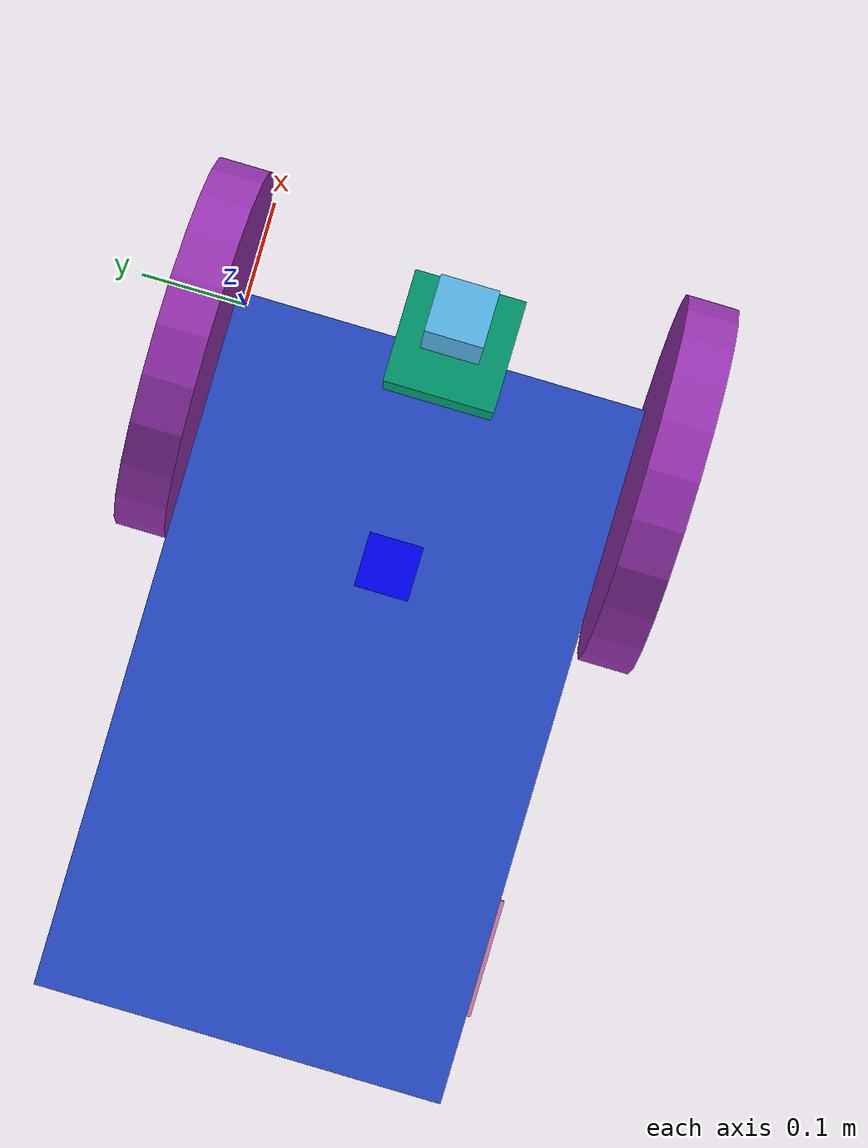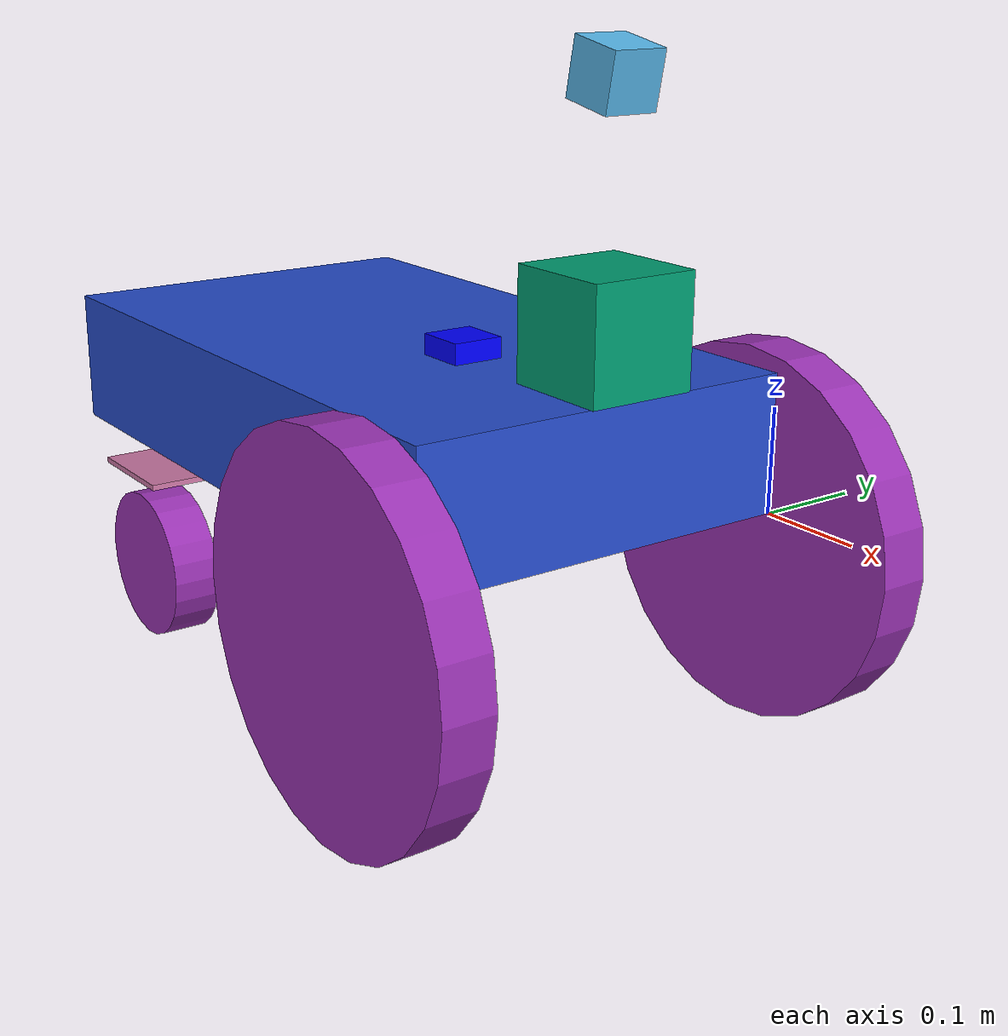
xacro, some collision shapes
<?xml version="1.0"?>

<robot name="ashwini" xmlns:xacro="ashwini_description_xacro_namespace">
  <!-- Dummy root link without inertia -->

  <xacro:include filename="$(find ashwini)/urdf/ashwini.gazebo" />

  <xacro:property name="pi" value="3.1415926535897931" />

  <xacro:property name="camera_mass" value="0.1"/>
	<xacro:property name="hokoyu_mass" value="1e-5"/>

  <xacro:property name="base_link_length_width_height" value="0.650 0.381 0.132" />
  <xacro:property name="base_link_length" value="0.650" />
  <xacro:property name="base_link_width" value="0.381" />
  <xacro:property name="base_link_height" value="0.132" />
  <xacro:property name="base_link_mass" value="20"/> <!--25 kg-->

  <xacro:property name="drive_wheel_length" value="0.049" />
  <xacro:property name="drive_wheel_radius" value="0.181" />
  <xacro:property name="drive_wheel_mass" value="2"/> <!--2 kg-->

  <xacro:property name="castor_mount_link_length_width_height" value="0.1145 0.10 0.0057" />
  <xacro:property name="castor_mount_link_length" value="0.1145" />
  <xacro:property name="castor_mount_link_width" value="0.10" />
  <xacro:property name="castor_mount_link_height" value="0.0057" />
  <xacro:property name="castor_mount_link_mass" value="0.25"/> <!--0.25 kg-->

  <xacro:property name="castor_mount_dummy_link_length" value="0.02" />
  <xacro:property name="castor_mount_dummy_link_width" value="0.02" />
  <xacro:property name="castor_mount_dummy_link_height" value="0.02" />
  <xacro:property name="castor_mount_dummy_link_mass" value="1.5"/> <!--0.25 kg-->

  <xacro:property name="castor_wheel_length" value="0.049" />
  <xacro:property name="castor_wheel_radius" value="0.07925" />
  <xacro:property name="castor_wheel_mass" value="2"/> <!--2 kg-->

  <xacro:property name="friction_val" value="0.15"/>

  <xacro:macro name="box_link" params="link_name length width height mass *origin">
    <link name="${link_name}_link">
      <collision>
        <geometry>
          <box size="${length} ${width} ${height}"/>
        </geometry>
        <xacro:insert_block name="origin" />
      </collision>

      <visual>
        <geometry>
          <!--box dimensions is Meters. L X W X H where the L X H is a ractange,
              and the H extrudes it upwards -->
          <box size="${length} ${width} ${height}"/>
        </geometry>
        <xacro:insert_block name="origin" />
      </visual>

      <inertial>
        <xacro:insert_block name="origin" />
        <!--all blocks now need a 'mass' argument-->
        <mass value="${mass}"/>
        <!--This is the 3x3 inertial matrix. See: https://wiki.ros.org/urdf/XML/link -->
        <!--where x=length; y=width; z=height. these lines of code came from
        Emiliano Borghi's project-->
        <inertia
          ixx="${mass*(width*width+height*height)/12}"
          ixy = "0"
          ixz = "0"
          iyy="${mass*(length*length+height*height)/12}"
          iyz = "0"
          izz="${mass*(length*length+height*height)/12}"/>
        </inertial>

    </link>
  </xacro:macro>

  <xacro:macro name="cylinder_link" params="link_name length radius mass *origin">
    <link name="${link_name}_link">
      <collision>
        <geometry>
          <cylinder length="${length}" radius="${radius}"/>
        </geometry>
        <xacro:insert_block name="origin" />
      </collision>

      <visual>
        <geometry>
          <cylinder length="${length}" radius="${radius}"/>
        </geometry>
        <xacro:insert_block name="origin" />

      </visual>

      <!--TODO-->
      <inertial>
        <xacro:insert_block name="origin" />
        <!--all blocks now need a 'mass' argument-->
        <mass value="${mass}"/>

        <!--This is the 3x3 inertial matrix. See: https://wiki.ros.org/urdf/XML/link -->
        <inertia
          ixx="${mass*(3*radius*radius+length*length)/12}"
    	  ixy = "0"
    	  ixz = "0"
    	  iyy="${mass*(3*radius*radius+length*length)/12}"
    	  iyz = "0"
    	  izz="${mass*radius*radius/2}"
        />
      </inertial>

    </link>
  </xacro:macro>

  <xacro:macro name="continuous_joint" params="name rpy xyz parent child friction *origin">
    <joint name="${name}_joint" type="continuous">
      <axis rpy="${rpy}" xyz="${xyz}"/>
      <parent link="${parent}_link"/>
      <child link="${child}_link"/>
      <!-- this is the point at which the two parts attach to one another    -->
      <xacro:insert_block name="origin" />
      <!--This introduces friction so that continious joints don't spin indefinitly
      damping is only used in Gazebo4 and earlier.... -->
      <dynamics damping="0.0" friction="${friction}"/>
    </joint>
  </xacro:macro>

  <xacro:macro name="fixed_joint" params="name parent child *origin">
    <joint name="${name}_joint" type="fixed">
      <parent link="${parent}_link"/>
      <child link="${child}_link"/>
      <!-- this is the point at which the two parts attach to one another    -->
      <xacro:insert_block name="origin" />
    </joint>
  </xacro:macro>

  <xacro:box_link link_name="base" length="${base_link_length}"
                                   width="${base_link_width}"
                                   height="${base_link_height}"  mass="${base_link_mass}">
    <!--origin rpy="0 0 0" xyz="-0.325 -0.1905 0.066"/-->
    <origin rpy="0 0 0" xyz="-0.325 -0.1905 0.066"/>
  </xacro:box_link>

  <xacro:cylinder_link link_name="left_drive_wheel" length="${drive_wheel_length}" radius="${drive_wheel_radius}"  mass="${drive_wheel_mass}">
    <origin xyz="0 0 0" rpy="${pi/2} 0 0"/>
  </xacro:cylinder_link>

  <xacro:continuous_joint name="base_to_left_drive_wheel" rpy="0 0 0" xyz="0 1 0" parent="base" child="left_drive_wheel"
                          friction="${friction_val}">
    <origin xyz="-0.05 0.037 -0.035"/>
  </xacro:continuous_joint>

  <!--right_drive_wheel_link is a well named link :-) -->
  <xacro:cylinder_link link_name="right_drive_wheel" length="${drive_wheel_length}" radius="${drive_wheel_radius}"  mass="${drive_wheel_mass}">
    <origin xyz="0 0 0" rpy="${pi/2} 0 0"/>
  </xacro:cylinder_link>

  <xacro:continuous_joint name="base_to_right_drive_wheel" rpy="0 0 0" xyz="0 1 0" parent="base" child="right_drive_wheel"
                          friction="${friction_val}">
    <origin xyz="-0.05 -0.421 -0.035"/>
  </xacro:continuous_joint>

  <!--+++++++++++++++++++++++++++++++++++LEFT CASTOR+++++++++++++++++++++++++++++++++++++++++++++++++++-->
  <!--left_caster_mount -->
  <xacro:box_link link_name="left_castor_mount" length="${castor_mount_link_length}"
                                                width="${castor_mount_link_width}"
                                                height="${castor_mount_link_height}"
                                                mass="${castor_mount_link_mass}">
    <origin xyz="0 0 0" rpy="0 0 0" />
  </xacro:box_link>

   <!--joint-->
  <xacro:fixed_joint name="base_to_left_castor_mount" parent="base" child="left_castor_mount">
    <origin xyz="-0.52835 -0.041 -0.03265"/>
  </xacro:fixed_joint>

  <!--left_caster_dummy to give the castor wheel rotation about the Z axis -->
  <xacro:box_link link_name="left_castor_dummy" length="${castor_mount_dummy_link_length}"
                                                width="${castor_mount_dummy_link_width}"
                                                height="${castor_mount_dummy_link_height}"
                                                mass="${castor_mount_dummy_link_mass}">
    <origin xyz="0 0 0" rpy="0 0 0" />
  </xacro:box_link>

  <!--joint between left castor mount and dummy link to allow rotation of castor wheel about z axis-->
  <xacro:continuous_joint name="left_castor_mount_to_left_castor_dummy" rpy="0 0 0" xyz="0 0 1"
                          parent="left_castor_mount" child="left_castor_dummy" friction="${friction_val}">
    <origin xyz="0.0 0.0 -0.01"/>
  </xacro:continuous_joint>

  <!--left_castor_wheel_link is a well named link :-) -->
  <xacro:cylinder_link link_name="left_castor_wheel" length="${castor_wheel_length}" radius="${castor_wheel_radius}"  mass="${castor_wheel_mass}">
    <origin xyz="0 0 0" rpy="${pi/2} 0 0"/>
  </xacro:cylinder_link>

  <xacro:continuous_joint name="left_castor_dummy_to_left_castor_wheel" rpy="0 0 0" xyz="0 1 0"
                          parent="left_castor_dummy" child="left_castor_wheel" friction="${friction_val}">
    <origin xyz="-0.037 0.0 -0.10785"/>
  </xacro:continuous_joint>

  <!--+++++++++++++++++++++++++++++++++++RIGHT CASTOR+++++++++++++++++++++++++++++++++++++++++++++++++++-->

  <!--right_caster_plate_link is a well named link :-) -->
  <xacro:box_link link_name="right_castor_mount" length="${castor_mount_link_length}"
                                                 width="${castor_mount_link_width}"
                                                 height="${castor_mount_link_height}"
                                                 mass="${castor_mount_link_mass}">
    <origin xyz="0 0 0" rpy="0 0 0" />
  </xacro:box_link>

  <xacro:fixed_joint name="base_to_right_castor_mount" parent="base" child="right_castor_mount">
    <origin xyz="-0.52835 -0.344 -0.03265"/>
  </xacro:fixed_joint>

  <!--right_caster_dummy to give the castor wheel rotation about the Z axis -->
  <xacro:box_link link_name="right_castor_dummy" length="${castor_mount_dummy_link_length}"
                                                 width="${castor_mount_dummy_link_width}"
                                                 height="${castor_mount_dummy_link_height}"
                                                 mass="${castor_mount_dummy_link_mass}">
    <origin xyz="0 0 0" rpy="0 0 0" />
  </xacro:box_link>

  <!--joint between right castor mount and dummy link to allow rotation of castor wheel about z axis-->
  <xacro:continuous_joint name="right_castor_mount_to_right_castor_dummy" rpy="0 0 0" xyz="0 0 1"
                          parent="right_castor_mount" child="right_castor_dummy" friction="${friction_val}">
    <origin xyz="0.0 0.0  -0.01"/>
  </xacro:continuous_joint>

  <!--right_castor_wheel_link is a well named link :-) -->
  <xacro:cylinder_link link_name="right_castor_wheel" length="${castor_wheel_length}" radius="${castor_wheel_radius}"
                        mass="${castor_wheel_mass}">
    <origin xyz="0 0 0" rpy="${pi/2} 0 0"/>
  </xacro:cylinder_link>

  <xacro:continuous_joint name="right_castor_dummy_to_right_castor_wheel" rpy="0 0 0" xyz="0 1 0"
                          parent="right_castor_dummy" child="right_castor_wheel" friction="${friction_val}">
    <origin xyz="-0.037 0 -0.10785"/>
  </xacro:continuous_joint>

  <link name="camera">
		<inertial>
			<mass value="${camera_mass}"/>
			<origin xyz="0 0 0" rpy="0 0 0"/>
			<inertia
		        ixx="1e-6" ixy="0.0" ixz="0.0"
		        iyy="1e-6" iyz="0.0"
		        izz="1e-6"
		      />
		</inertial>

		<visual>
			<origin xyz="0 0 0" rpy="0 0 0"/>
			<geometry>
				<box size="0.05 0.05 0.05"/>
			</geometry>
		</visual>

		<collision>
			<origin xyz="0 0 0" rpy="0 0 0"/>
			<geometry>
				<box size="0.05 0.05 0.05"/>
			</geometry>
		</collision>
	</link>

  <link name="hokuyo">
		<inertial>
			<mass value="${hokoyu_mass}"/>
			<origin xyz="0 0 0" rpy="0 0 0"/>

			<inertia
		        ixx="1e-6" ixy="0.0" ixz="0.0"
		        iyy="1e-6" iyz="0.0"
		        izz="1e-6"
		      />
		</inertial>

		<visual>
			<origin xyz="0 0 0" rpy="0 0 0"/>
			<geometry>
				<mesh filename="package://ashwini/meshes/hokuyo.dae"/>
			</geometry>
		</visual>

		<collision>
			<origin xyz="0 0 0" rpy="0 0 0"/>
			<geometry>
				<box size="0.1 0.1 0.1"/>
			</geometry>
		</collision>
	</link>

  <joint name="camera_joint" type="fixed">
		<origin xyz="0.006 -0.2 0.4" rpy="0 0.2 0" />
		<parent link="base_link"/>
		<child link="camera" />
		<axis xyz="0 1 0"/>
	</joint>

	<!-- Hokoyu Joint -->
	<joint name="hokuyo_joint" type="fixed">
	    <origin xyz="0.001 -0.2 0.2" rpy="0 0 0" />
	    <parent link="base_link"/>
	    <child link="hokuyo" />
	    <axis xyz="0 1 0"/>
	</joint>

    <!-- IMU Sensor -->
  <link name="imu_link">
    <inertial>
      <mass value="0.05"/>
      <origin xyz="0 0 0" rpy="0 0 0"/>
      <inertia ixx="0.0001" ixy="0.0" ixz="0.0"
               iyy="0.0001" iyz="0.0"
               izz="0.0001"/>
    </inertial>
    <visual>
      <geometry>
        <box size="0.05 0.05 0.02"/>
      </geometry>
      <material name="Blue">
        <color rgba="0.0 0.0 1.0 1.0"/>
      </material>
    </visual>
    <collision>
      <geometry>
        <box size="0.05 0.05 0.02"/>
      </geometry>
    </collision>
  </link>

  <!-- IMU Joint (Attach to Base Link) -->
  <joint name="imu_joint" type="fixed">
    <parent link="base_link"/>
    <child link="imu_link"/>
    <origin xyz="-0.2 -0.2 0.144" rpy="0 0 0"/>
  </joint>

</robot>
